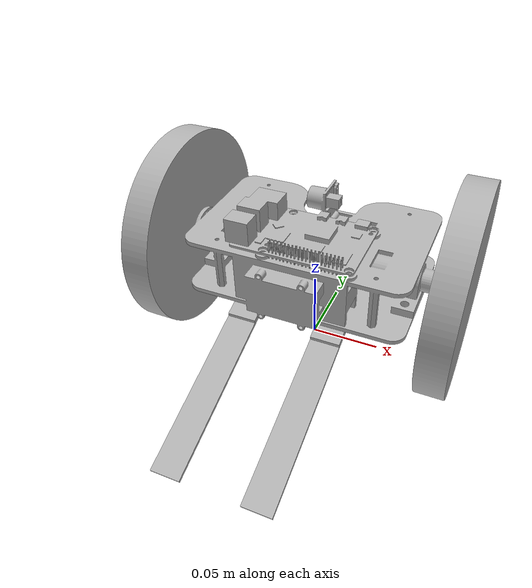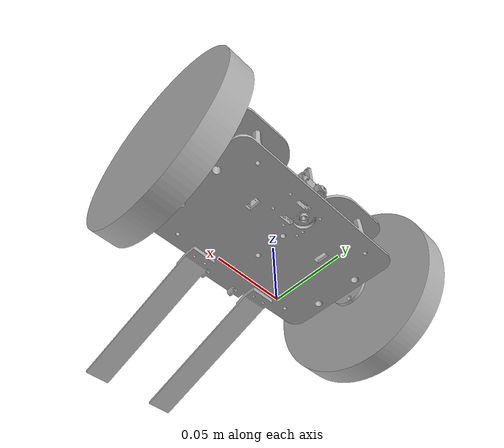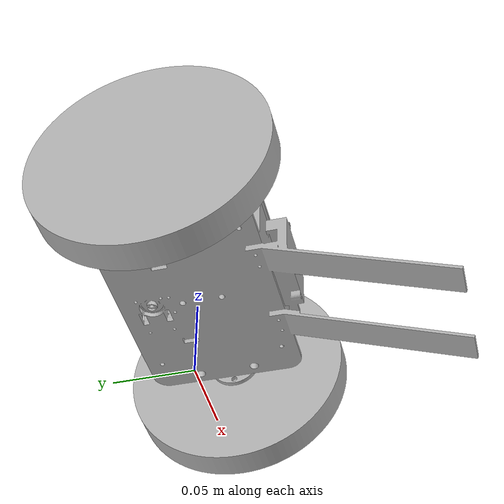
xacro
<?xml version="1.0" ?>
<robot name="ForROS" xmlns:xacro="http://www.ros.org/wiki/xacro">

<xacro:include filename="$(find ForROS_description)/urdf/materials.xacro" />
<xacro:include filename="$(find ForROS_description)/urdf/ForROS.trans" />
<xacro:include filename="$(find ForROS_description)/urdf/ForROS.gazebo" />
<link name="base_footprint"/>
<link name="base_link">
  <inertial>
    <origin xyz="0.00049117830066263 -0.009780351666287004 0.07118629641241767" rpy="0 0 0"/>
    <mass value="0.25016474153306034"/>
    <inertia ixx="0.000333" iyy="0.000517" izz="0.000726" ixy="-5e-06" iyz="-4e-05" ixz="-0.0"/>
  </inertial>
  <visual>
    <origin xyz="0 0 -0.073005" rpy="0 0 0"/>
    <geometry>
      <mesh filename="file://$(find ForROS_description)/meshes/base_link.stl" scale="0.001 0.001 0.001"/>
    </geometry>
    <material name="silver"/>
  </visual>
  <collision>
    <origin xyz="0 0 0" rpy="0 0 0"/>
    <geometry>
      <mesh filename="file://$(find ForROS_description)/meshes/base_link.stl" scale="0.001 0.001 0.001"/>
    </geometry>
  </collision>
</link>

<link name="RaspberryPi_1">
  <inertial>
    <origin xyz="0.000549946651029417 -0.023988893579614225 0.005680415420320897" rpy="0 0 0"/>
    <mass value="0.16657879817354218"/>
    <inertia ixx="4.7e-05" iyy="0.000108" izz="0.000146" ixy="-2e-06" iyz="1e-06" ixz="1.2e-05"/>
  </inertial>
  <visual>
    <origin xyz="0.019 -0.0045 -0.098205" rpy="0 0 0"/>
    <geometry>
      <mesh filename="file://$(find ForROS_description)/meshes/RaspberryPi_1.stl" scale="0.001 0.001 0.001"/>
    </geometry>
    <material name="silver"/>
  </visual>
  <collision>
    <origin xyz="0.019 -0.0045 -0.098205" rpy="0 0 0"/>
    <geometry>
      <mesh filename="file://$(find ForROS_description)/meshes/RaspberryPi_1.stl" scale="0.001 0.001 0.001"/>
    </geometry>
  </collision>
</link>

<link name="Camera_link_1">
  <inertial>
    <origin xyz="-0.01234464717368007 0.0007909573025063274 -0.010732269549067155" rpy="0 0 0"/>
    <mass value="0.009739005858820688"/>
    <inertia ixx="0.0" iyy="1e-06" izz="0.0" ixy="-0.0" iyz="-0.0" ixz="0.0"/>
  </inertial>
  <visual>
    <origin xyz="-0.01243 -0.043715 -0.081725" rpy="0 0 0"/>
    <geometry>
      <mesh filename="file://$(find ForROS_description)/meshes/Camera_link_1.stl" scale="0.001 0.001 0.001"/>
    </geometry>
    <material name="silver"/>
  </visual>
  <collision>
    <origin xyz="-0.01243 -0.043715 -0.081725" rpy="0 0 0"/>
    <geometry>
      <mesh filename="file://$(find ForROS_description)/meshes/Camera_link_1.stl" scale="0.001 0.001 0.001"/>
    </geometry>
  </collision>
</link>

<link name="Battery_v1_1_1">
  <inertial>
    <origin xyz="-0.036499999999999894 8.326672684688674e-17 0.0" rpy="0 0 0"/>
    <mass value="0.34096475"/>
    <inertia ixx="4.3e-05" iyy="0.000186" izz="0.00016" ixy="-0.0" iyz="-0.0" ixz="-0.0"/>
  </inertial>
  <visual>
    <origin xyz="-0.0365 0.037 -0.075505" rpy="0 0 0"/>
    <geometry>
      <mesh filename="file://$(find ForROS_description)/meshes/Battery_v1_1_1.stl" scale="0.001 0.001 0.001"/>
    </geometry>
    <material name="silver"/>
  </visual>
  <collision>
    <origin xyz="-0.0365 0.037 -0.075505" rpy="0 0 0"/>
    <geometry>
      <mesh filename="file://$(find ForROS_description)/meshes/Battery_v1_1_1.stl" scale="0.001 0.001 0.001"/>
    </geometry>
  </collision>
</link>

<link name="Lidar_link_1">
  <inertial>
    <origin xyz="-0.005110778358159219 -0.00037745206548664076 0.014726243086830501" rpy="0 0 0"/>
    <mass value="0.0410253525704472"/>
    <inertia ixx="3e-06" iyy="3e-06" izz="3e-06" ixy="0.0" iyz="0.0" ixz="0.0"/>
  </inertial>
  <visual>
    <origin xyz="-0.0 -0.03 -0.083805" rpy="0 0 0"/>
    <geometry>
      <mesh filename="file://$(find ForROS_description)/meshes/Lidar_link_1.stl" scale="0.001 0.001 0.001"/>
    </geometry>
    <material name="silver"/>
  </visual>
  <collision>
    <origin xyz="-0.0 -0.03 -0.083805" rpy="0 0 0"/>
    <geometry>
      <mesh filename="file://$(find ForROS_description)/meshes/Lidar_link_1.stl" scale="0.001 0.001 0.001"/>
    </geometry>
  </collision>
</link>

<link name="Rwheel_link_1">
  <inertial>
    <origin xyz="0.009999999046325828 -4.0829913766993425e-16 -7.216449660063518e-16" rpy="0 0 0"/>
    <mass value="2.628422918403861"/>
    <inertia ixx="0.007003" iyy="0.003589" izz="0.003589" ixy="-0.0" iyz="0.0" ixz="-0.0"/>
  </inertial>
  <visual>
    <origin xyz="-0.0902 0.0 -0.073005" rpy="0 0 0"/>
    <geometry>
      <mesh filename="file://$(find ForROS_description)/meshes/Rwheel_link_1.stl" scale="0.001 0.001 0.001"/>
    </geometry>
    <material name="silver"/>
  </visual>
  <collision>
    <origin xyz="-0.0902 0.0 -0.073005" rpy="0 0 0"/>
    <geometry>
      <mesh filename="file://$(find ForROS_description)/meshes/Rwheel_link_1.stl" scale="0.001 0.001 0.001"/>
    </geometry>
  </collision>
</link>

<link name="Lwheel_link_1">
  <inertial>
    <origin xyz="-0.00999999904632548 -2.4446522753376446e-16 -4.3021142204224816e-16" rpy="0 0 0"/>
    <mass value="2.628422918403913"/>
    <inertia ixx="0.007003" iyy="0.003589" izz="0.003589" ixy="-0.0" iyz="0.0" ixz="-0.0"/>
  </inertial>
  <visual>
    <origin xyz="0.0902 -0.0 -0.073005" rpy="0 0 0"/>
    <geometry>
      <mesh filename="file://$(find ForROS_description)/meshes/Lwheel_link_1.stl" scale="0.001 0.001 0.001"/>
    </geometry>
    <material name="silver"/>
  </visual>
  <collision>
    <origin xyz="0.0902 -0.0 -0.073005" rpy="0 0 0"/>
    <geometry>
      <mesh filename="file://$(find ForROS_description)/meshes/Lwheel_link_1.stl" scale="0.001 0.001 0.001"/>
    </geometry>
  </collision>
</link>

<joint name="Rigid_Pi" type="fixed">
  <origin xyz="-0.019 0.0045 0.0252" rpy="0 0 0"/>
  <parent link="base_link"/>
  <child link="RaspberryPi_1"/>
</joint>

<joint name="Rigid_Camera" type="fixed">
  <origin xyz="0.01243 0.043715 0.00872" rpy="0 0 0"/>
  <parent link="base_link"/>
  <child link="Camera_link_1"/>
</joint>

<joint name="Rigid_Battery" type="fixed">
  <origin xyz="0.0365 -0.037 0.0025" rpy="0 0 0"/>
  <parent link="base_link"/>
  <child link="Battery_v1_1_1"/>
</joint>

<joint name="lidar_joint" type="continuous">
  <origin xyz="0.0 0.03 0.0108" rpy="0 0 0"/>
  <parent link="base_link"/>
  <child link="Lidar_link_1"/>
  <axis xyz="0.0 -0.0 -1.0"/>
</joint>

<joint name="r_joint" type="continuous">
  <origin xyz="0.0902 0.0 0.0" rpy="0 0 0"/>
  <parent link="base_link"/>
  <child link="Rwheel_link_1"/>
  <axis xyz="1.0 -0.0 -0.0"/>
</joint>

<joint name="l_joint" type="continuous">
  <origin xyz="-0.0902 0.0 0.0" rpy="0 0 0"/>
  <parent link="base_link"/>
  <child link="Lwheel_link_1"/>
  <axis xyz="-1.0 0.0 0.0"/>
</joint>

<joint name="base_joint" type="fixed">
  <origin xyz="0 0 0.073005"/>
  <parent link="base_footprint"/>
  <child link="base_link"/>
</joint>

</robot>

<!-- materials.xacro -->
<robot name="ForROS" xmlns:xacro="http://www.ros.org/wiki/xacro" >

<material name="silver">
  <color rgba="0.700 0.700 0.700 1.000"/>
</material>

</robot>

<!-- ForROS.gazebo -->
<robot name="ForROS" xmlns:xacro="http://www.ros.org/wiki/xacro" >

<xacro:property name="body_color" value="Gazebo/Silver" />

<gazebo>
  <plugin name="control" filename="libgazebo_ros_control.so"/>
</gazebo>
<gazebo reference="base_link">
  <material>${body_color}</material>
  <mu1>0.2</mu1>
  <mu2>0.2</mu2>
  <self_collide>true</self_collide>
  <gravity>true</gravity>
</gazebo>

<gazebo reference="RaspberryPi_1">
  <material>${body_color}</material>
  <mu1>0.2</mu1>
  <mu2>0.2</mu2>
  <self_collide>true</self_collide>
</gazebo>

<gazebo reference="Camera_link_1">
  <material>${body_color}</material>
  <mu1>0.2</mu1>
  <mu2>0.2</mu2>
  <self_collide>true</self_collide>
</gazebo>

<gazebo reference="Battery_v1_1_1">
  <material>${body_color}</material>
  <mu1>0.2</mu1>
  <mu2>0.2</mu2>
  <self_collide>true</self_collide>
</gazebo>

<gazebo reference="Lidar_link_1">
  <material>${body_color}</material>
  <mu1>0.2</mu1>
  <mu2>0.2</mu2>
  <self_collide>true</self_collide>
</gazebo>

<gazebo reference="Rwheel_link_1">
  <material>${body_color}</material>
  <mu1>0.2</mu1>
  <mu2>0.2</mu2>
  <self_collide>true</self_collide>
</gazebo>

<gazebo reference="Lwheel_link_1">
  <material>${body_color}</material>
  <mu1>0.2</mu1>
  <mu2>0.2</mu2>
  <self_collide>true</self_collide>
</gazebo>

</robot>
